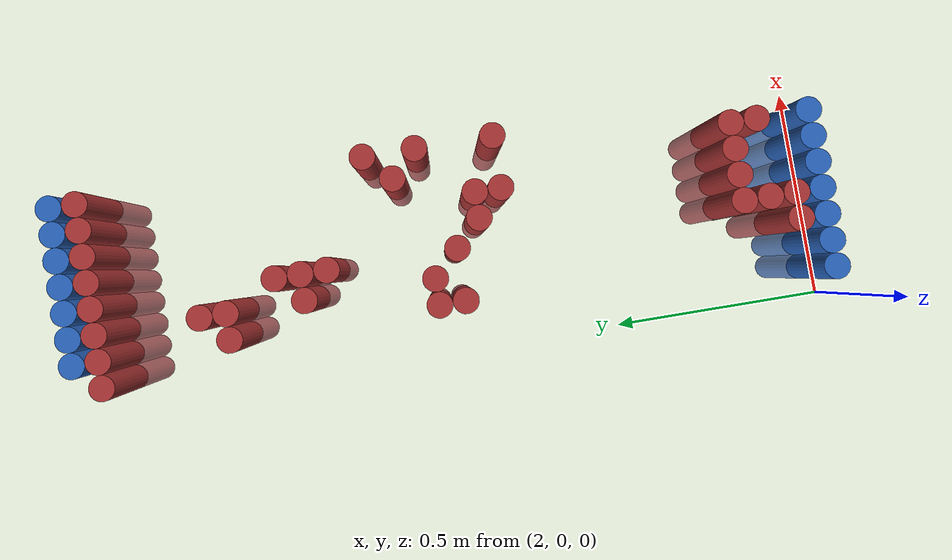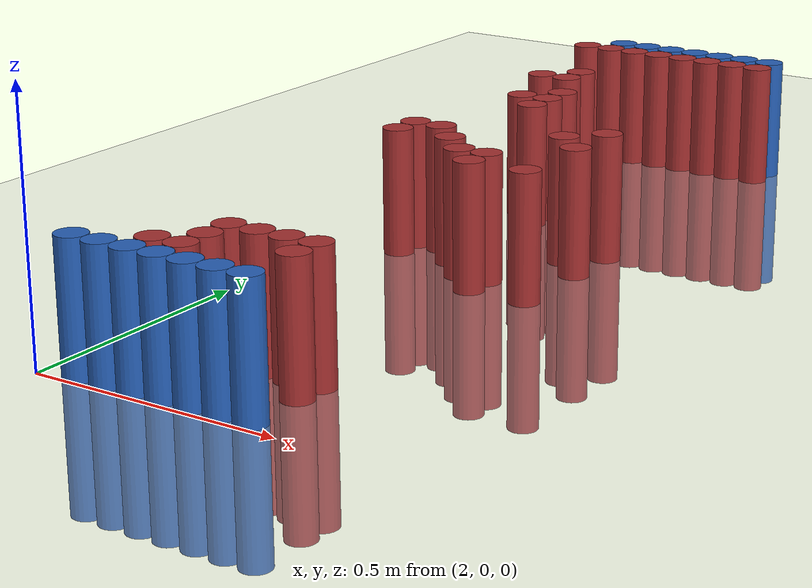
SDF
<sdf version="1.6">
 <world name="default">
  <model name="ground_plane">
   <static>1</static>
   <link name="link">
    <collision name="collision">
     <geometry><plane><normal>0 0 1</normal><size>100 100</size></plane></geometry>
     <surface><friction><ode><mu>100</mu><mu2>50</mu2></ode></friction></surface>
    </collision>
    <visual name="visual">
     <cast_shadows>0</cast_shadows>
     <geometry><plane><normal>0 0 1</normal><size>100 100</size></plane></geometry>
     <material>
      <script><uri>file://media/materials/scripts/gazebo.material</uri><name>Gazebo/Grey</name></script>
     </material>
    </visual>
   </link>
  </model>
  <model name="unit_cylinder_96">
   <static>1</static>
   <pose>2.130000 1.770000 0.000000 0.000000 0.000000 0.000000</pose>
   <link name="link">
    <inertial>
     <mass>1</mass>
     <inertia><ixx>0.145833</ixx><ixy>0</ixy><ixz>0</ixz><iyy>0.145833</iyy><iyz>0</iyz><izz>0.125</izz></inertia>
    </inertial>
    <collision name="collision">
     <geometry><cylinder><radius>0.030000</radius><length>0.5</length></cylinder></geometry>
    </collision>
    <visual name="visual">
     <geometry><cylinder><radius>0.030000</radius><length>0.5</length></cylinder></geometry>
     <material>
      <ambient>0.152000 0.379000 0.720000 1</ambient>
      <diffuse>0.152000 0.379000 0.720000 1</diffuse>
     </material>
     <material>
      <script><name>Gazebo/Grey</name><uri>file://media/materials/scripts/gazebo.material</uri></script>
     </material>
    </visual>
   </link>
  </model>
  <model name="unit_cylinder_97">
   <static>1</static>
   <pose>2.190000 1.770000 0.000000 0.000000 0.000000 0.000000</pose>
   <link name="link">
    <inertial>
     <mass>1</mass>
     <inertia><ixx>0.145833</ixx><ixy>0</ixy><ixz>0</ixz><iyy>0.145833</iyy><iyz>0</iyz><izz>0.125</izz></inertia>
    </inertial>
    <collision name="collision">
     <geometry><cylinder><radius>0.030000</radius><length>0.5</length></cylinder></geometry>
    </collision>
    <visual name="visual">
     <geometry><cylinder><radius>0.030000</radius><length>0.5</length></cylinder></geometry>
     <material>
      <ambient>0.152000 0.379000 0.720000 1</ambient>
      <diffuse>0.152000 0.379000 0.720000 1</diffuse>
     </material>
     <material>
      <script><name>Gazebo/Grey</name><uri>file://media/materials/scripts/gazebo.material</uri></script>
     </material>
    </visual>
   </link>
  </model>
  <model name="unit_cylinder_98">
   <static>1</static>
   <pose>2.250000 1.770000 0.000000 0.000000 0.000000 0.000000</pose>
   <link name="link">
    <inertial>
     <mass>1</mass>
     <inertia><ixx>0.145833</ixx><ixy>0</ixy><ixz>0</ixz><iyy>0.145833</iyy><iyz>0</iyz><izz>0.125</izz></inertia>
    </inertial>
    <collision name="collision">
     <geometry><cylinder><radius>0.030000</radius><length>0.5</length></cylinder></geometry>
    </collision>
    <visual name="visual">
     <geometry><cylinder><radius>0.030000</radius><length>0.5</length></cylinder></geometry>
     <material>
      <ambient>0.152000 0.379000 0.720000 1</ambient>
      <diffuse>0.152000 0.379000 0.720000 1</diffuse>
     </material>
     <material>
      <script><name>Gazebo/Grey</name><uri>file://media/materials/scripts/gazebo.material</uri></script>
     </material>
    </visual>
   </link>
  </model>
  <model name="unit_cylinder_99">
   <static>1</static>
   <pose>2.310000 1.770000 0.000000 0.000000 0.000000 0.000000</pose>
   <link name="link">
    <inertial>
     <mass>1</mass>
     <inertia><ixx>0.145833</ixx><ixy>0</ixy><ixz>0</ixz><iyy>0.145833</iyy><iyz>0</iyz><izz>0.125</izz></inertia>
    </inertial>
    <collision name="collision">
     <geometry><cylinder><radius>0.030000</radius><length>0.5</length></cylinder></geometry>
    </collision>
    <visual name="visual">
     <geometry><cylinder><radius>0.030000</radius><length>0.5</length></cylinder></geometry>
     <material>
      <ambient>0.152000 0.379000 0.720000 1</ambient>
      <diffuse>0.152000 0.379000 0.720000 1</diffuse>
     </material>
     <material>
      <script><name>Gazebo/Grey</name><uri>file://media/materials/scripts/gazebo.material</uri></script>
     </material>
    </visual>
   </link>
  </model>
  <model name="unit_cylinder_100">
   <static>1</static>
   <pose>2.370000 1.770000 0.000000 0.000000 0.000000 0.000000</pose>
   <link name="link">
    <inertial>
     <mass>1</mass>
     <inertia><ixx>0.145833</ixx><ixy>0</ixy><ixz>0</ixz><iyy>0.145833</iyy><iyz>0</iyz><izz>0.125</izz></inertia>
    </inertial>
    <collision name="collision">
     <geometry><cylinder><radius>0.030000</radius><length>0.5</length></cylinder></geometry>
    </collision>
    <visual name="visual">
     <geometry><cylinder><radius>0.030000</radius><length>0.5</length></cylinder></geometry>
     <material>
      <ambient>0.152000 0.379000 0.720000 1</ambient>
      <diffuse>0.152000 0.379000 0.720000 1</diffuse>
     </material>
     <material>
      <script><name>Gazebo/Grey</name><uri>file://media/materials/scripts/gazebo.material</uri></script>
     </material>
    </visual>
   </link>
  </model>
  <model name="unit_cylinder_101">
   <static>1</static>
   <pose>2.430000 1.770000 0.000000 0.000000 0.000000 0.000000</pose>
   <link name="link">
    <inertial>
     <mass>1</mass>
     <inertia><ixx>0.145833</ixx><ixy>0</ixy><ixz>0</ixz><iyy>0.145833</iyy><iyz>0</iyz><izz>0.125</izz></inertia>
    </inertial>
    <collision name="collision">
     <geometry><cylinder><radius>0.030000</radius><length>0.5</length></cylinder></geometry>
    </collision>
    <visual name="visual">
     <geometry><cylinder><radius>0.030000</radius><length>0.5</length></cylinder></geometry>
     <material>
      <ambient>0.152000 0.379000 0.720000 1</ambient>
      <diffuse>0.152000 0.379000 0.720000 1</diffuse>
     </material>
     <material>
      <script><name>Gazebo/Grey</name><uri>file://media/materials/scripts/gazebo.material</uri></script>
     </material>
    </visual>
   </link>
  </model>
  <model name="unit_cylinder_102">
   <static>1</static>
   <pose>2.490000 1.770000 0.000000 0.000000 0.000000 0.000000</pose>
   <link name="link">
    <inertial>
     <mass>1</mass>
     <inertia><ixx>0.145833</ixx><ixy>0</ixy><ixz>0</ixz><iyy>0.145833</iyy><iyz>0</iyz><izz>0.125</izz></inertia>
    </inertial>
    <collision name="collision">
     <geometry><cylinder><radius>0.030000</radius><length>0.5</length></cylinder></geometry>
    </collision>
    <visual name="visual">
     <geometry><cylinder><radius>0.030000</radius><length>0.5</length></cylinder></geometry>
     <material>
      <ambient>0.152000 0.379000 0.720000 1</ambient>
      <diffuse>0.152000 0.379000 0.720000 1</diffuse>
     </material>
     <material>
      <script><name>Gazebo/Grey</name><uri>file://media/materials/scripts/gazebo.material</uri></script>
     </material>
    </visual>
   </link>
  </model>
  <model name="unit_cylinder_125">
   <static>1</static>
   <pose>2.070000 1.710000 0.000000 0.000000 0.000000 0.000000</pose>
   <link name="link">
    <inertial>
     <mass>1</mass>
     <inertia><ixx>0.145833</ixx><ixy>0</ixy><ixz>0</ixz><iyy>0.145833</iyy><iyz>0</iyz><izz>0.125</izz></inertia>
    </inertial>
    <collision name="collision">
     <geometry><cylinder><radius>0.030000</radius><length>0.5</length></cylinder></geometry>
    </collision>
    <visual name="visual">
     <geometry><cylinder><radius>0.030000</radius><length>0.5</length></cylinder></geometry>
     <material>
      <ambient>0.648000 0.192000 0.192000 1</ambient>
      <diffuse>0.648000 0.192000 0.192000 1</diffuse>
     </material>
     <material>
      <script><name>Gazebo/Grey</name><uri>file://media/materials/scripts/gazebo.material</uri></script>
     </material>
    </visual>
   </link>
  </model>
  <model name="unit_cylinder_126">
   <static>1</static>
   <pose>2.130000 1.710000 0.000000 0.000000 0.000000 0.000000</pose>
   <link name="link">
    <inertial>
     <mass>1</mass>
     <inertia><ixx>0.145833</ixx><ixy>0</ixy><ixz>0</ixz><iyy>0.145833</iyy><iyz>0</iyz><izz>0.125</izz></inertia>
    </inertial>
    <collision name="collision">
     <geometry><cylinder><radius>0.030000</radius><length>0.5</length></cylinder></geometry>
    </collision>
    <visual name="visual">
     <geometry><cylinder><radius>0.030000</radius><length>0.5</length></cylinder></geometry>
     <material>
      <ambient>0.648000 0.192000 0.192000 1</ambient>
      <diffuse>0.648000 0.192000 0.192000 1</diffuse>
     </material>
     <material>
      <script><name>Gazebo/Grey</name><uri>file://media/materials/scripts/gazebo.material</uri></script>
     </material>
    </visual>
   </link>
  </model>
  <model name="unit_cylinder_127">
   <static>1</static>
   <pose>2.190000 1.710000 0.000000 0.000000 0.000000 0.000000</pose>
   <link name="link">
    <inertial>
     <mass>1</mass>
     <inertia><ixx>0.145833</ixx><ixy>0</ixy><ixz>0</ixz><iyy>0.145833</iyy><iyz>0</iyz><izz>0.125</izz></inertia>
    </inertial>
    <collision name="collision">
     <geometry><cylinder><radius>0.030000</radius><length>0.5</length></cylinder></geometry>
    </collision>
    <visual name="visual">
     <geometry><cylinder><radius>0.030000</radius><length>0.5</length></cylinder></geometry>
     <material>
      <ambient>0.648000 0.192000 0.192000 1</ambient>
      <diffuse>0.648000 0.192000 0.192000 1</diffuse>
     </material>
     <material>
      <script><name>Gazebo/Grey</name><uri>file://media/materials/scripts/gazebo.material</uri></script>
     </material>
    </visual>
   </link>
  </model>
  <model name="unit_cylinder_128">
   <static>1</static>
   <pose>2.250000 1.710000 0.000000 0.000000 0.000000 0.000000</pose>
   <link name="link">
    <inertial>
     <mass>1</mass>
     <inertia><ixx>0.145833</ixx><ixy>0</ixy><ixz>0</ixz><iyy>0.145833</iyy><iyz>0</iyz><izz>0.125</izz></inertia>
    </inertial>
    <collision name="collision">
     <geometry><cylinder><radius>0.030000</radius><length>0.5</length></cylinder></geometry>
    </collision>
    <visual name="visual">
     <geometry><cylinder><radius>0.030000</radius><length>0.5</length></cylinder></geometry>
     <material>
      <ambient>0.648000 0.192000 0.192000 1</ambient>
      <diffuse>0.648000 0.192000 0.192000 1</diffuse>
     </material>
     <material>
      <script><name>Gazebo/Grey</name><uri>file://media/materials/scripts/gazebo.material</uri></script>
     </material>
    </visual>
   </link>
  </model>
  <model name="unit_cylinder_129">
   <static>1</static>
   <pose>2.310000 1.710000 0.000000 0.000000 0.000000 0.000000</pose>
   <link name="link">
    <inertial>
     <mass>1</mass>
     <inertia><ixx>0.145833</ixx><ixy>0</ixy><ixz>0</ixz><iyy>0.145833</iyy><iyz>0</iyz><izz>0.125</izz></inertia>
    </inertial>
    <collision name="collision">
     <geometry><cylinder><radius>0.030000</radius><length>0.5</length></cylinder></geometry>
    </collision>
    <visual name="visual">
     <geometry><cylinder><radius>0.030000</radius><length>0.5</length></cylinder></geometry>
     <material>
      <ambient>0.648000 0.192000 0.192000 1</ambient>
      <diffuse>0.648000 0.192000 0.192000 1</diffuse>
     </material>
     <material>
      <script><name>Gazebo/Grey</name><uri>file://media/materials/scripts/gazebo.material</uri></script>
     </material>
    </visual>
   </link>
  </model>
  <model name="unit_cylinder_130">
   <static>1</static>
   <pose>2.370000 1.710000 0.000000 0.000000 0.000000 0.000000</pose>
   <link name="link">
    <inertial>
     <mass>1</mass>
     <inertia><ixx>0.145833</ixx><ixy>0</ixy><ixz>0</ixz><iyy>0.145833</iyy><iyz>0</iyz><izz>0.125</izz></inertia>
    </inertial>
    <collision name="collision">
     <geometry><cylinder><radius>0.030000</radius><length>0.5</length></cylinder></geometry>
    </collision>
    <visual name="visual">
     <geometry><cylinder><radius>0.030000</radius><length>0.5</length></cylinder></geometry>
     <material>
      <ambient>0.648000 0.192000 0.192000 1</ambient>
      <diffuse>0.648000 0.192000 0.192000 1</diffuse>
     </material>
     <material>
      <script><name>Gazebo/Grey</name><uri>file://media/materials/scripts/gazebo.material</uri></script>
     </material>
    </visual>
   </link>
  </model>
  <model name="unit_cylinder_131">
   <static>1</static>
   <pose>2.430000 1.710000 0.000000 0.000000 0.000000 0.000000</pose>
   <link name="link">
    <inertial>
     <mass>1</mass>
     <inertia><ixx>0.145833</ixx><ixy>0</ixy><ixz>0</ixz><iyy>0.145833</iyy><iyz>0</iyz><izz>0.125</izz></inertia>
    </inertial>
    <collision name="collision">
     <geometry><cylinder><radius>0.030000</radius><length>0.5</length></cylinder></geometry>
    </collision>
    <visual name="visual">
     <geometry><cylinder><radius>0.030000</radius><length>0.5</length></cylinder></geometry>
     <material>
      <ambient>0.648000 0.192000 0.192000 1</ambient>
      <diffuse>0.648000 0.192000 0.192000 1</diffuse>
     </material>
     <material>
      <script><name>Gazebo/Grey</name><uri>file://media/materials/scripts/gazebo.material</uri></script>
     </material>
    </visual>
   </link>
  </model>
  <model name="unit_cylinder_132">
   <static>1</static>
   <pose>2.490000 1.710000 0.000000 0.000000 0.000000 0.000000</pose>
   <link name="link">
    <inertial>
     <mass>1</mass>
     <inertia><ixx>0.145833</ixx><ixy>0</ixy><ixz>0</ixz><iyy>0.145833</iyy><iyz>0</iyz><izz>0.125</izz></inertia>
    </inertial>
    <collision name="collision">
     <geometry><cylinder><radius>0.030000</radius><length>0.5</length></cylinder></geometry>
    </collision>
    <visual name="visual">
     <geometry><cylinder><radius>0.030000</radius><length>0.5</length></cylinder></geometry>
     <material>
      <ambient>0.648000 0.192000 0.192000 1</ambient>
      <diffuse>0.648000 0.192000 0.192000 1</diffuse>
     </material>
     <material>
      <script><name>Gazebo/Grey</name><uri>file://media/materials/scripts/gazebo.material</uri></script>
     </material>
    </visual>
   </link>
  </model>
  <model name="unit_cylinder_155">
   <static>1</static>
   <pose>2.190000 1.470000 0.000000 0.000000 0.000000 0.000000</pose>
   <link name="link">
    <inertial>
     <mass>1</mass>
     <inertia><ixx>0.145833</ixx><ixy>0</ixy><ixz>0</ixz><iyy>0.145833</iyy><iyz>0</iyz><izz>0.125</izz></inertia>
    </inertial>
    <collision name="collision">
     <geometry><cylinder><radius>0.030000</radius><length>0.5</length></cylinder></geometry>
    </collision>
    <visual name="visual">
     <geometry><cylinder><radius>0.030000</radius><length>0.5</length></cylinder></geometry>
     <material>
      <ambient>0.648000 0.192000 0.192000 1</ambient>
      <diffuse>0.648000 0.192000 0.192000 1</diffuse>
     </material>
     <material>
      <script><name>Gazebo/Grey</name><uri>file://media/materials/scripts/gazebo.material</uri></script>
     </material>
    </visual>
   </link>
  </model>
  <model name="unit_cylinder_158">
   <static>1</static>
   <pose>2.130000 1.410000 0.000000 0.000000 0.000000 0.000000</pose>
   <link name="link">
    <inertial>
     <mass>1</mass>
     <inertia><ixx>0.145833</ixx><ixy>0</ixy><ixz>0</ixz><iyy>0.145833</iyy><iyz>0</iyz><izz>0.125</izz></inertia>
    </inertial>
    <collision name="collision">
     <geometry><cylinder><radius>0.030000</radius><length>0.5</length></cylinder></geometry>
    </collision>
    <visual name="visual">
     <geometry><cylinder><radius>0.030000</radius><length>0.5</length></cylinder></geometry>
     <material>
      <ambient>0.648000 0.192000 0.192000 1</ambient>
      <diffuse>0.648000 0.192000 0.192000 1</diffuse>
     </material>
     <material>
      <script><name>Gazebo/Grey</name><uri>file://media/materials/scripts/gazebo.material</uri></script>
     </material>
    </visual>
   </link>
  </model>
  <model name="unit_cylinder_159">
   <static>1</static>
   <pose>2.190000 1.410000 0.000000 0.000000 0.000000 0.000000</pose>
   <link name="link">
    <inertial>
     <mass>1</mass>
     <inertia><ixx>0.145833</ixx><ixy>0</ixy><ixz>0</ixz><iyy>0.145833</iyy><iyz>0</iyz><izz>0.125</izz></inertia>
    </inertial>
    <collision name="collision">
     <geometry><cylinder><radius>0.030000</radius><length>0.5</length></cylinder></geometry>
    </collision>
    <visual name="visual">
     <geometry><cylinder><radius>0.030000</radius><length>0.5</length></cylinder></geometry>
     <material>
      <ambient>0.648000 0.192000 0.192000 1</ambient>
      <diffuse>0.648000 0.192000 0.192000 1</diffuse>
     </material>
     <material>
      <script><name>Gazebo/Grey</name><uri>file://media/materials/scripts/gazebo.material</uri></script>
     </material>
    </visual>
   </link>
  </model>
  <model name="unit_cylinder_168">
   <static>1</static>
   <pose>2.250000 1.290000 0.000000 0.000000 0.000000 0.000000</pose>
   <link name="link">
    <inertial>
     <mass>1</mass>
     <inertia><ixx>0.145833</ixx><ixy>0</ixy><ixz>0</ixz><iyy>0.145833</iyy><iyz>0</iyz><izz>0.125</izz></inertia>
    </inertial>
    <collision name="collision">
     <geometry><cylinder><radius>0.030000</radius><length>0.5</length></cylinder></geometry>
    </collision>
    <visual name="visual">
     <geometry><cylinder><radius>0.030000</radius><length>0.5</length></cylinder></geometry>
     <material>
      <ambient>0.648000 0.192000 0.192000 1</ambient>
      <diffuse>0.648000 0.192000 0.192000 1</diffuse>
     </material>
     <material>
      <script><name>Gazebo/Grey</name><uri>file://media/materials/scripts/gazebo.material</uri></script>
     </material>
    </visual>
   </link>
  </model>
  <model name="unit_cylinder_174">
   <static>1</static>
   <pose>2.190000 1.230000 0.000000 0.000000 0.000000 0.000000</pose>
   <link name="link">
    <inertial>
     <mass>1</mass>
     <inertia><ixx>0.145833</ixx><ixy>0</ixy><ixz>0</ixz><iyy>0.145833</iyy><iyz>0</iyz><izz>0.125</izz></inertia>
    </inertial>
    <collision name="collision">
     <geometry><cylinder><radius>0.030000</radius><length>0.5</length></cylinder></geometry>
    </collision>
    <visual name="visual">
     <geometry><cylinder><radius>0.030000</radius><length>0.5</length></cylinder></geometry>
     <material>
      <ambient>0.648000 0.192000 0.192000 1</ambient>
      <diffuse>0.648000 0.192000 0.192000 1</diffuse>
     </material>
     <material>
      <script><name>Gazebo/Grey</name><uri>file://media/materials/scripts/gazebo.material</uri></script>
     </material>
    </visual>
   </link>
  </model>
  <model name="unit_cylinder_175">
   <static>1</static>
   <pose>2.250000 1.230000 0.000000 0.000000 0.000000 0.000000</pose>
   <link name="link">
    <inertial>
     <mass>1</mass>
     <inertia><ixx>0.145833</ixx><ixy>0</ixy><ixz>0</ixz><iyy>0.145833</iyy><iyz>0</iyz><izz>0.125</izz></inertia>
    </inertial>
    <collision name="collision">
     <geometry><cylinder><radius>0.030000</radius><length>0.5</length></cylinder></geometry>
    </collision>
    <visual name="visual">
     <geometry><cylinder><radius>0.030000</radius><length>0.5</length></cylinder></geometry>
     <material>
      <ambient>0.648000 0.192000 0.192000 1</ambient>
      <diffuse>0.648000 0.192000 0.192000 1</diffuse>
     </material>
     <material>
      <script><name>Gazebo/Grey</name><uri>file://media/materials/scripts/gazebo.material</uri></script>
     </material>
    </visual>
   </link>
  </model>
  <model name="unit_cylinder_178">
   <static>1</static>
   <pose>2.250000 1.170000 0.000000 0.000000 0.000000 0.000000</pose>
   <link name="link">
    <inertial>
     <mass>1</mass>
     <inertia><ixx>0.145833</ixx><ixy>0</ixy><ixz>0</ixz><iyy>0.145833</iyy><iyz>0</iyz><izz>0.125</izz></inertia>
    </inertial>
    <collision name="collision">
     <geometry><cylinder><radius>0.030000</radius><length>0.5</length></cylinder></geometry>
    </collision>
    <visual name="visual">
     <geometry><cylinder><radius>0.030000</radius><length>0.5</length></cylinder></geometry>
     <material>
      <ambient>0.648000 0.192000 0.192000 1</ambient>
      <diffuse>0.648000 0.192000 0.192000 1</diffuse>
     </material>
     <material>
      <script><name>Gazebo/Grey</name><uri>file://media/materials/scripts/gazebo.material</uri></script>
     </material>
    </visual>
   </link>
  </model>
  <model name="unit_cylinder_188">
   <static>1</static>
   <pose>2.490000 1.050000 0.000000 0.000000 0.000000 0.000000</pose>
   <link name="link">
    <inertial>
     <mass>1</mass>
     <inertia><ixx>0.145833</ixx><ixy>0</ixy><ixz>0</ixz><iyy>0.145833</iyy><iyz>0</iyz><izz>0.125</izz></inertia>
    </inertial>
    <collision name="collision">
     <geometry><cylinder><radius>0.030000</radius><length>0.5</length></cylinder></geometry>
    </collision>
    <visual name="visual">
     <geometry><cylinder><radius>0.030000</radius><length>0.5</length></cylinder></geometry>
     <material>
      <ambient>0.648000 0.192000 0.192000 1</ambient>
      <diffuse>0.648000 0.192000 0.192000 1</diffuse>
     </material>
     <material>
      <script><name>Gazebo/Grey</name><uri>file://media/materials/scripts/gazebo.material</uri></script>
     </material>
    </visual>
   </link>
  </model>
  <model name="unit_cylinder_193">
   <static>1</static>
   <pose>2.430000 0.990000 0.000000 0.000000 0.000000 0.000000</pose>
   <link name="link">
    <inertial>
     <mass>1</mass>
     <inertia><ixx>0.145833</ixx><ixy>0</ixy><ixz>0</ixz><iyy>0.145833</iyy><iyz>0</iyz><izz>0.125</izz></inertia>
    </inertial>
    <collision name="collision">
     <geometry><cylinder><radius>0.030000</radius><length>0.5</length></cylinder></geometry>
    </collision>
    <visual name="visual">
     <geometry><cylinder><radius>0.030000</radius><length>0.5</length></cylinder></geometry>
     <material>
      <ambient>0.648000 0.192000 0.192000 1</ambient>
      <diffuse>0.648000 0.192000 0.192000 1</diffuse>
     </material>
     <material>
      <script><name>Gazebo/Grey</name><uri>file://media/materials/scripts/gazebo.material</uri></script>
     </material>
    </visual>
   </link>
  </model>
  <model name="unit_cylinder_197">
   <static>1</static>
   <pose>2.130000 0.930000 0.000000 0.000000 0.000000 0.000000</pose>
   <link name="link">
    <inertial>
     <mass>1</mass>
     <inertia><ixx>0.145833</ixx><ixy>0</ixy><ixz>0</ixz><iyy>0.145833</iyy><iyz>0</iyz><izz>0.125</izz></inertia>
    </inertial>
    <collision name="collision">
     <geometry><cylinder><radius>0.030000</radius><length>0.5</length></cylinder></geometry>
    </collision>
    <visual name="visual">
     <geometry><cylinder><radius>0.030000</radius><length>0.5</length></cylinder></geometry>
     <material>
      <ambient>0.648000 0.192000 0.192000 1</ambient>
      <diffuse>0.648000 0.192000 0.192000 1</diffuse>
     </material>
     <material>
      <script><name>Gazebo/Grey</name><uri>file://media/materials/scripts/gazebo.material</uri></script>
     </material>
    </visual>
   </link>
  </model>
  <model name="unit_cylinder_198">
   <static>1</static>
   <pose>2.190000 0.930000 0.000000 0.000000 0.000000 0.000000</pose>
   <link name="link">
    <inertial>
     <mass>1</mass>
     <inertia><ixx>0.145833</ixx><ixy>0</ixy><ixz>0</ixz><iyy>0.145833</iyy><iyz>0</iyz><izz>0.125</izz></inertia>
    </inertial>
    <collision name="collision">
     <geometry><cylinder><radius>0.030000</radius><length>0.5</length></cylinder></geometry>
    </collision>
    <visual name="visual">
     <geometry><cylinder><radius>0.030000</radius><length>0.5</length></cylinder></geometry>
     <material>
      <ambient>0.648000 0.192000 0.192000 1</ambient>
      <diffuse>0.648000 0.192000 0.192000 1</diffuse>
     </material>
     <material>
      <script><name>Gazebo/Grey</name><uri>file://media/materials/scripts/gazebo.material</uri></script>
     </material>
    </visual>
   </link>
  </model>
  <model name="unit_cylinder_199">
   <static>1</static>
   <pose>2.490000 0.930000 0.000000 0.000000 0.000000 0.000000</pose>
   <link name="link">
    <inertial>
     <mass>1</mass>
     <inertia><ixx>0.145833</ixx><ixy>0</ixy><ixz>0</ixz><iyy>0.145833</iyy><iyz>0</iyz><izz>0.125</izz></inertia>
    </inertial>
    <collision name="collision">
     <geometry><cylinder><radius>0.030000</radius><length>0.5</length></cylinder></geometry>
    </collision>
    <visual name="visual">
     <geometry><cylinder><radius>0.030000</radius><length>0.5</length></cylinder></geometry>
     <material>
      <ambient>0.648000 0.192000 0.192000 1</ambient>
      <diffuse>0.648000 0.192000 0.192000 1</diffuse>
     </material>
     <material>
      <script><name>Gazebo/Grey</name><uri>file://media/materials/scripts/gazebo.material</uri></script>
     </material>
    </visual>
   </link>
  </model>
  <model name="unit_cylinder_203">
   <static>1</static>
   <pose>2.130000 0.870000 0.000000 0.000000 0.000000 0.000000</pose>
   <link name="link">
    <inertial>
     <mass>1</mass>
     <inertia><ixx>0.145833</ixx><ixy>0</ixy><ixz>0</ixz><iyy>0.145833</iyy><iyz>0</iyz><izz>0.125</izz></inertia>
    </inertial>
    <collision name="collision">
     <geometry><cylinder><radius>0.030000</radius><length>0.5</length></cylinder></geometry>
    </collision>
    <visual name="visual">
     <geometry><cylinder><radius>0.030000</radius><length>0.5</length></cylinder></geometry>
     <material>
      <ambient>0.648000 0.192000 0.192000 1</ambient>
      <diffuse>0.648000 0.192000 0.192000 1</diffuse>
     </material>
     <material>
      <script><name>Gazebo/Grey</name><uri>file://media/materials/scripts/gazebo.material</uri></script>
     </material>
    </visual>
   </link>
  </model>
  <model name="unit_cylinder_204">
   <static>1</static>
   <pose>2.250000 0.870000 0.000000 0.000000 0.000000 0.000000</pose>
   <link name="link">
    <inertial>
     <mass>1</mass>
     <inertia><ixx>0.145833</ixx><ixy>0</ixy><ixz>0</ixz><iyy>0.145833</iyy><iyz>0</iyz><izz>0.125</izz></inertia>
    </inertial>
    <collision name="collision">
     <geometry><cylinder><radius>0.030000</radius><length>0.5</length></cylinder></geometry>
    </collision>
    <visual name="visual">
     <geometry><cylinder><radius>0.030000</radius><length>0.5</length></cylinder></geometry>
     <material>
      <ambient>0.648000 0.192000 0.192000 1</ambient>
      <diffuse>0.648000 0.192000 0.192000 1</diffuse>
     </material>
     <material>
      <script><name>Gazebo/Grey</name><uri>file://media/materials/scripts/gazebo.material</uri></script>
     </material>
    </visual>
   </link>
  </model>
  <model name="unit_cylinder_208">
   <static>1</static>
   <pose>2.310000 0.810000 0.000000 0.000000 0.000000 0.000000</pose>
   <link name="link">
    <inertial>
     <mass>1</mass>
     <inertia><ixx>0.145833</ixx><ixy>0</ixy><ixz>0</ixz><iyy>0.145833</iyy><iyz>0</iyz><izz>0.125</izz></inertia>
    </inertial>
    <collision name="collision">
     <geometry><cylinder><radius>0.030000</radius><length>0.5</length></cylinder></geometry>
    </collision>
    <visual name="visual">
     <geometry><cylinder><radius>0.030000</radius><length>0.5</length></cylinder></geometry>
     <material>
      <ambient>0.648000 0.192000 0.192000 1</ambient>
      <diffuse>0.648000 0.192000 0.192000 1</diffuse>
     </material>
     <material>
      <script><name>Gazebo/Grey</name><uri>file://media/materials/scripts/gazebo.material</uri></script>
     </material>
    </visual>
   </link>
  </model>
  <model name="unit_cylinder_209">
   <static>1</static>
   <pose>2.370000 0.810000 0.000000 0.000000 0.000000 0.000000</pose>
   <link name="link">
    <inertial>
     <mass>1</mass>
     <inertia><ixx>0.145833</ixx><ixy>0</ixy><ixz>0</ixz><iyy>0.145833</iyy><iyz>0</iyz><izz>0.125</izz></inertia>
    </inertial>
    <collision name="collision">
     <geometry><cylinder><radius>0.030000</radius><length>0.5</length></cylinder></geometry>
    </collision>
    <visual name="visual">
     <geometry><cylinder><radius>0.030000</radius><length>0.5</length></cylinder></geometry>
     <material>
      <ambient>0.648000 0.192000 0.192000 1</ambient>
      <diffuse>0.648000 0.192000 0.192000 1</diffuse>
     </material>
     <material>
      <script><name>Gazebo/Grey</name><uri>file://media/materials/scripts/gazebo.material</uri></script>
     </material>
    </visual>
   </link>
  </model>
  <model name="unit_cylinder_216">
   <static>1</static>
   <pose>2.370000 0.750000 0.000000 0.000000 0.000000 0.000000</pose>
   <link name="link">
    <inertial>
     <mass>1</mass>
     <inertia><ixx>0.145833</ixx><ixy>0</ixy><ixz>0</ixz><iyy>0.145833</iyy><iyz>0</iyz><izz>0.125</izz></inertia>
    </inertial>
    <collision name="collision">
     <geometry><cylinder><radius>0.030000</radius><length>0.5</length></cylinder></geometry>
    </collision>
    <visual name="visual">
     <geometry><cylinder><radius>0.030000</radius><length>0.5</length></cylinder></geometry>
     <material>
      <ambient>0.648000 0.192000 0.192000 1</ambient>
      <diffuse>0.648000 0.192000 0.192000 1</diffuse>
     </material>
     <material>
      <script><name>Gazebo/Grey</name><uri>file://media/materials/scripts/gazebo.material</uri></script>
     </material>
    </visual>
   </link>
  </model>
  <model name="unit_cylinder_217">
   <static>1</static>
   <pose>2.490000 0.750000 0.000000 0.000000 0.000000 0.000000</pose>
   <link name="link">
    <inertial>
     <mass>1</mass>
     <inertia><ixx>0.145833</ixx><ixy>0</ixy><ixz>0</ixz><iyy>0.145833</iyy><iyz>0</iyz><izz>0.125</izz></inertia>
    </inertial>
    <collision name="collision">
     <geometry><cylinder><radius>0.030000</radius><length>0.5</length></cylinder></geometry>
    </collision>
    <visual name="visual">
     <geometry><cylinder><radius>0.030000</radius><length>0.5</length></cylinder></geometry>
     <material>
      <ambient>0.648000 0.192000 0.192000 1</ambient>
      <diffuse>0.648000 0.192000 0.192000 1</diffuse>
     </material>
     <material>
      <script><name>Gazebo/Grey</name><uri>file://media/materials/scripts/gazebo.material</uri></script>
     </material>
    </visual>
   </link>
  </model>
  <model name="unit_cylinder_227">
   <static>1</static>
   <pose>2.250000 0.210000 0.000000 0.000000 0.000000 0.000000</pose>
   <link name="link">
    <inertial>
     <mass>1</mass>
     <inertia><ixx>0.145833</ixx><ixy>0</ixy><ixz>0</ixz><iyy>0.145833</iyy><iyz>0</iyz><izz>0.125</izz></inertia>
    </inertial>
    <collision name="collision">
     <geometry><cylinder><radius>0.030000</radius><length>0.5</length></cylinder></geometry>
    </collision>
    <visual name="visual">
     <geometry><cylinder><radius>0.030000</radius><length>0.5</length></cylinder></geometry>
     <material>
      <ambient>0.648000 0.192000 0.192000 1</ambient>
      <diffuse>0.648000 0.192000 0.192000 1</diffuse>
     </material>
     <material>
      <script><name>Gazebo/Grey</name><uri>file://media/materials/scripts/gazebo.material</uri></script>
     </material>
    </visual>
   </link>
  </model>
  <model name="unit_cylinder_228">
   <static>1</static>
   <pose>2.310000 0.210000 0.000000 0.000000 0.000000 0.000000</pose>
   <link name="link">
    <inertial>
     <mass>1</mass>
     <inertia><ixx>0.145833</ixx><ixy>0</ixy><ixz>0</ixz><iyy>0.145833</iyy><iyz>0</iyz><izz>0.125</izz></inertia>
    </inertial>
    <collision name="collision">
     <geometry><cylinder><radius>0.030000</radius><length>0.5</length></cylinder></geometry>
    </collision>
    <visual name="visual">
     <geometry><cylinder><radius>0.030000</radius><length>0.5</length></cylinder></geometry>
     <material>
      <ambient>0.648000 0.192000 0.192000 1</ambient>
      <diffuse>0.648000 0.192000 0.192000 1</diffuse>
     </material>
     <material>
      <script><name>Gazebo/Grey</name><uri>file://media/materials/scripts/gazebo.material</uri></script>
     </material>
    </visual>
   </link>
  </model>
  <model name="unit_cylinder_229">
   <static>1</static>
   <pose>2.370000 0.210000 0.000000 0.000000 0.000000 0.000000</pose>
   <link name="link">
    <inertial>
     <mass>1</mass>
     <inertia><ixx>0.145833</ixx><ixy>0</ixy><ixz>0</ixz><iyy>0.145833</iyy><iyz>0</iyz><izz>0.125</izz></inertia>
    </inertial>
    <collision name="collision">
     <geometry><cylinder><radius>0.030000</radius><length>0.5</length></cylinder></geometry>
    </collision>
    <visual name="visual">
     <geometry><cylinder><radius>0.030000</radius><length>0.5</length></cylinder></geometry>
     <material>
      <ambient>0.648000 0.192000 0.192000 1</ambient>
      <diffuse>0.648000 0.192000 0.192000 1</diffuse>
     </material>
     <material>
      <script><name>Gazebo/Grey</name><uri>file://media/materials/scripts/gazebo.material</uri></script>
     </material>
    </visual>
   </link>
  </model>
  <model name="unit_cylinder_230">
   <static>1</static>
   <pose>2.430000 0.210000 0.000000 0.000000 0.000000 0.000000</pose>
   <link name="link">
    <inertial>
     <mass>1</mass>
     <inertia><ixx>0.145833</ixx><ixy>0</ixy><ixz>0</ixz><iyy>0.145833</iyy><iyz>0</iyz><izz>0.125</izz></inertia>
    </inertial>
    <collision name="collision">
     <geometry><cylinder><radius>0.030000</radius><length>0.5</length></cylinder></geometry>
    </collision>
    <visual name="visual">
     <geometry><cylinder><radius>0.030000</radius><length>0.5</length></cylinder></geometry>
     <material>
      <ambient>0.648000 0.192000 0.192000 1</ambient>
      <diffuse>0.648000 0.192000 0.192000 1</diffuse>
     </material>
     <material>
      <script><name>Gazebo/Grey</name><uri>file://media/materials/scripts/gazebo.material</uri></script>
     </material>
    </visual>
   </link>
  </model>
  <model name="unit_cylinder_234">
   <static>1</static>
   <pose>2.250000 0.150000 0.000000 0.000000 0.000000 0.000000</pose>
   <link name="link">
    <inertial>
     <mass>1</mass>
     <inertia><ixx>0.145833</ixx><ixy>0</ixy><ixz>0</ixz><iyy>0.145833</iyy><iyz>0</iyz><izz>0.125</izz></inertia>
    </inertial>
    <collision name="collision">
     <geometry><cylinder><radius>0.030000</radius><length>0.5</length></cylinder></geometry>
    </collision>
    <visual name="visual">
     <geometry><cylinder><radius>0.030000</radius><length>0.5</length></cylinder></geometry>
     <material>
      <ambient>0.648000 0.192000 0.192000 1</ambient>
      <diffuse>0.648000 0.192000 0.192000 1</diffuse>
     </material>
     <material>
      <script><name>Gazebo/Grey</name><uri>file://media/materials/scripts/gazebo.material</uri></script>
     </material>
    </visual>
   </link>
  </model>
  <model name="unit_cylinder_235">
   <static>1</static>
   <pose>2.430000 0.150000 0.000000 0.000000 0.000000 0.000000</pose>
   <link name="link">
    <inertial>
     <mass>1</mass>
     <inertia><ixx>0.145833</ixx><ixy>0</ixy><ixz>0</ixz><iyy>0.145833</iyy><iyz>0</iyz><izz>0.125</izz></inertia>
    </inertial>
    <collision name="collision">
     <geometry><cylinder><radius>0.030000</radius><length>0.5</length></cylinder></geometry>
    </collision>
    <visual name="visual">
     <geometry><cylinder><radius>0.030000</radius><length>0.5</length></cylinder></geometry>
     <material>
      <ambient>0.648000 0.192000 0.192000 1</ambient>
      <diffuse>0.648000 0.192000 0.192000 1</diffuse>
     </material>
     <material>
      <script><name>Gazebo/Grey</name><uri>file://media/materials/scripts/gazebo.material</uri></script>
     </material>
    </visual>
   </link>
  </model>
  <model name="unit_cylinder_240">
   <static>1</static>
   <pose>2.190000 0.090000 0.000000 0.000000 0.000000 0.000000</pose>
   <link name="link">
    <inertial>
     <mass>1</mass>
     <inertia><ixx>0.145833</ixx><ixy>0</ixy><ixz>0</ixz><iyy>0.145833</iyy><iyz>0</iyz><izz>0.125</izz></inertia>
    </inertial>
    <collision name="collision">
     <geometry><cylinder><radius>0.030000</radius><length>0.5</length></cylinder></geometry>
    </collision>
    <visual name="visual">
     <geometry><cylinder><radius>0.030000</radius><length>0.5</length></cylinder></geometry>
     <material>
      <ambient>0.648000 0.192000 0.192000 1</ambient>
      <diffuse>0.648000 0.192000 0.192000 1</diffuse>
     </material>
     <material>
      <script><name>Gazebo/Grey</name><uri>file://media/materials/scripts/gazebo.material</uri></script>
     </material>
    </visual>
   </link>
  </model>
  <model name="unit_cylinder_241">
   <static>1</static>
   <pose>2.250000 0.090000 0.000000 0.000000 0.000000 0.000000</pose>
   <link name="link">
    <inertial>
     <mass>1</mass>
     <inertia><ixx>0.145833</ixx><ixy>0</ixy><ixz>0</ixz><iyy>0.145833</iyy><iyz>0</iyz><izz>0.125</izz></inertia>
    </inertial>
    <collision name="collision">
     <geometry><cylinder><radius>0.030000</radius><length>0.5</length></cylinder></geometry>
    </collision>
    <visual name="visual">
     <geometry><cylinder><radius>0.030000</radius><length>0.5</length></cylinder></geometry>
     <material>
      <ambient>0.648000 0.192000 0.192000 1</ambient>
      <diffuse>0.648000 0.192000 0.192000 1</diffuse>
     </material>
     <material>
      <script><name>Gazebo/Grey</name><uri>file://media/materials/scripts/gazebo.material</uri></script>
     </material>
    </visual>
   </link>
  </model>
  <model name="unit_cylinder_257">
   <static>1</static>
   <pose>2.070000 0.030000 0.000000 0.000000 0.000000 0.000000</pose>
   <link name="link">
    <inertial>
     <mass>1</mass>
     <inertia><ixx>0.145833</ixx><ixy>0</ixy><ixz>0</ixz><iyy>0.145833</iyy><iyz>0</iyz><izz>0.125</izz></inertia>
    </inertial>
    <collision name="collision">
     <geometry><cylinder><radius>0.030000</radius><length>0.5</length></cylinder></geometry>
    </collision>
    <visual name="visual">
     <geometry><cylinder><radius>0.030000</radius><length>0.5</length></cylinder></geometry>
     <material>
      <ambient>0.152000 0.379000 0.720000 1</ambient>
      <diffuse>0.152000 0.379000 0.720000 1</diffuse>
     </material>
     <material>
      <script><name>Gazebo/Grey</name><uri>file://media/materials/scripts/gazebo.material</uri></script>
     </material>
    </visual>
   </link>
  </model>
  <model name="unit_cylinder_258">
   <static>1</static>
   <pose>2.130000 0.030000 0.000000 0.000000 0.000000 0.000000</pose>
   <link name="link">
    <inertial>
     <mass>1</mass>
     <inertia><ixx>0.145833</ixx><ixy>0</ixy><ixz>0</ixz><iyy>0.145833</iyy><iyz>0</iyz><izz>0.125</izz></inertia>
    </inertial>
    <collision name="collision">
     <geometry><cylinder><radius>0.030000</radius><length>0.5</length></cylinder></geometry>
    </collision>
    <visual name="visual">
     <geometry><cylinder><radius>0.030000</radius><length>0.5</length></cylinder></geometry>
     <material>
      <ambient>0.152000 0.379000 0.720000 1</ambient>
      <diffuse>0.152000 0.379000 0.720000 1</diffuse>
     </material>
     <material>
      <script><name>Gazebo/Grey</name><uri>file://media/materials/scripts/gazebo.material</uri></script>
     </material>
    </visual>
   </link>
  </model>
  <model name="unit_cylinder_259">
   <static>1</static>
   <pose>2.190000 0.030000 0.000000 0.000000 0.000000 0.000000</pose>
   <link name="link">
    <inertial>
     <mass>1</mass>
     <inertia><ixx>0.145833</ixx><ixy>0</ixy><ixz>0</ixz><iyy>0.145833</iyy><iyz>0</iyz><izz>0.125</izz></inertia>
    </inertial>
    <collision name="collision">
     <geometry><cylinder><radius>0.030000</radius><length>0.5</length></cylinder></geometry>
    </collision>
    <visual name="visual">
     <geometry><cylinder><radius>0.030000</radius><length>0.5</length></cylinder></geometry>
     <material>
      <ambient>0.152000 0.379000 0.720000 1</ambient>
      <diffuse>0.152000 0.379000 0.720000 1</diffuse>
     </material>
     <material>
      <script><name>Gazebo/Grey</name><uri>file://media/materials/scripts/gazebo.material</uri></script>
     </material>
    </visual>
   </link>
  </model>
  <model name="unit_cylinder_260">
   <static>1</static>
   <pose>2.250000 0.030000 0.000000 0.000000 0.000000 0.000000</pose>
   <link name="link">
    <inertial>
     <mass>1</mass>
     <inertia><ixx>0.145833</ixx><ixy>0</ixy><ixz>0</ixz><iyy>0.145833</iyy><iyz>0</iyz><izz>0.125</izz></inertia>
    </inertial>
    <collision name="collision">
     <geometry><cylinder><radius>0.030000</radius><length>0.5</length></cylinder></geometry>
    </collision>
    <visual name="visual">
     <geometry><cylinder><radius>0.030000</radius><length>0.5</length></cylinder></geometry>
     <material>
      <ambient>0.152000 0.379000 0.720000 1</ambient>
      <diffuse>0.152000 0.379000 0.720000 1</diffuse>
     </material>
     <material>
      <script><name>Gazebo/Grey</name><uri>file://media/materials/scripts/gazebo.material</uri></script>
     </material>
    </visual>
   </link>
  </model>
  <model name="unit_cylinder_261">
   <static>1</static>
   <pose>2.310000 0.030000 0.000000 0.000000 0.000000 0.000000</pose>
   <link name="link">
    <inertial>
     <mass>1</mass>
     <inertia><ixx>0.145833</ixx><ixy>0</ixy><ixz>0</ixz><iyy>0.145833</iyy><iyz>0</iyz><izz>0.125</izz></inertia>
    </inertial>
    <collision name="collision">
     <geometry><cylinder><radius>0.030000</radius><length>0.5</length></cylinder></geometry>
    </collision>
    <visual name="visual">
     <geometry><cylinder><radius>0.030000</radius><length>0.5</length></cylinder></geometry>
     <material>
      <ambient>0.152000 0.379000 0.720000 1</ambient>
      <diffuse>0.152000 0.379000 0.720000 1</diffuse>
     </material>
     <material>
      <script><name>Gazebo/Grey</name><uri>file://media/materials/scripts/gazebo.material</uri></script>
     </material>
    </visual>
   </link>
  </model>
  <model name="unit_cylinder_262">
   <static>1</static>
   <pose>2.370000 0.030000 0.000000 0.000000 0.000000 0.000000</pose>
   <link name="link">
    <inertial>
     <mass>1</mass>
     <inertia><ixx>0.145833</ixx><ixy>0</ixy><ixz>0</ixz><iyy>0.145833</iyy><iyz>0</iyz><izz>0.125</izz></inertia>
    </inertial>
    <collision name="collision">
     <geometry><cylinder><radius>0.030000</radius><length>0.5</length></cylinder></geometry>
    </collision>
    <visual name="visual">
     <geometry><cylinder><radius>0.030000</radius><length>0.5</length></cylinder></geometry>
     <material>
      <ambient>0.152000 0.379000 0.720000 1</ambient>
      <diffuse>0.152000 0.379000 0.720000 1</diffuse>
     </material>
     <material>
      <script><name>Gazebo/Grey</name><uri>file://media/materials/scripts/gazebo.material</uri></script>
     </material>
    </visual>
   </link>
  </model>
  <model name="unit_cylinder_263">
   <static>1</static>
   <pose>2.430000 0.030000 0.000000 0.000000 0.000000 0.000000</pose>
   <link name="link">
    <inertial>
     <mass>1</mass>
     <inertia><ixx>0.145833</ixx><ixy>0</ixy><ixz>0</ixz><iyy>0.145833</iyy><iyz>0</iyz><izz>0.125</izz></inertia>
    </inertial>
    <collision name="collision">
     <geometry><cylinder><radius>0.030000</radius><length>0.5</length></cylinder></geometry>
    </collision>
    <visual name="visual">
     <geometry><cylinder><radius>0.030000</radius><length>0.5</length></cylinder></geometry>
     <material>
      <ambient>0.152000 0.379000 0.720000 1</ambient>
      <diffuse>0.152000 0.379000 0.720000 1</diffuse>
     </material>
     <material>
      <script><name>Gazebo/Grey</name><uri>file://media/materials/scripts/gazebo.material</uri></script>
     </material>
    </visual>
   </link>
  </model>
 </world>
</sdf>
